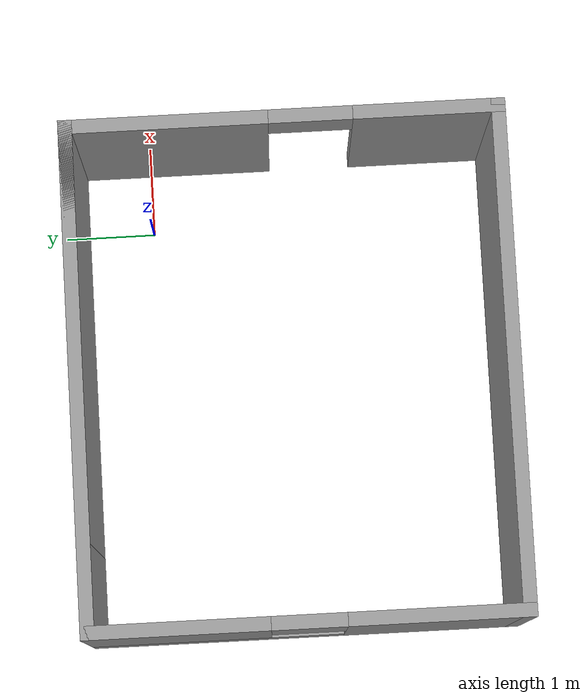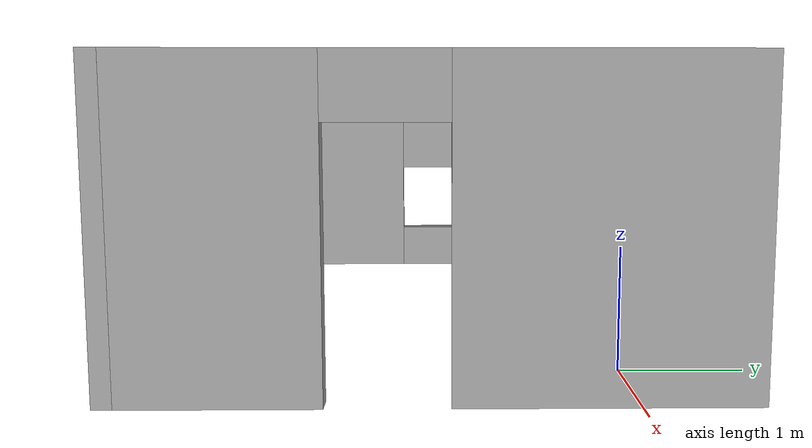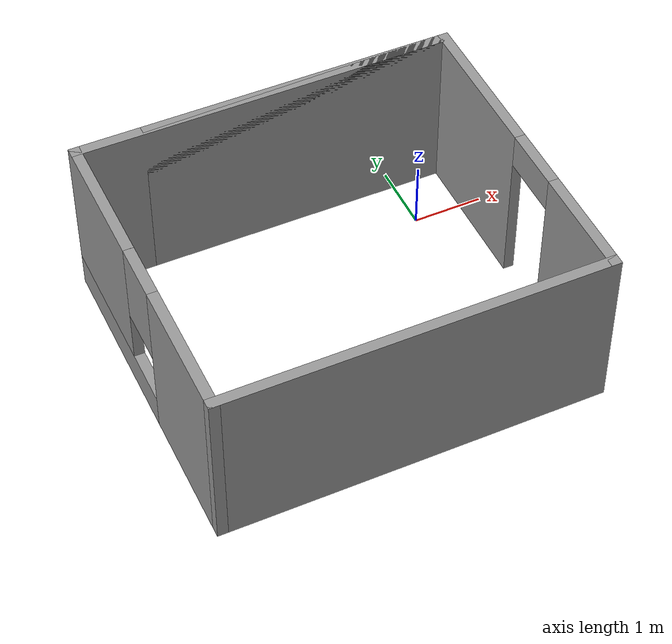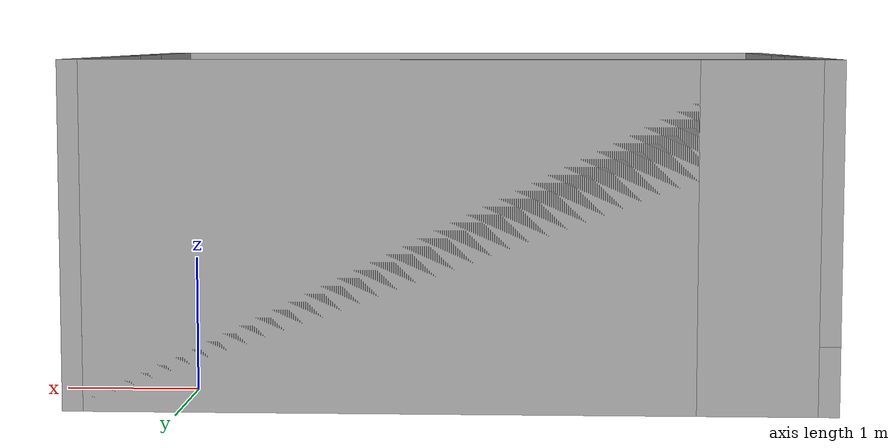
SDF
<?xml version='1.0'?>
<sdf version='1.7'>
  <model name='Card_shop'>
    <pose>-1.91789 -1.49091 0 0 -0 0</pose>
    <link name='Wall_0'>
      <collision name='Wall_0_Collision'>
        <geometry>
          <box>
            <size>4.5 0.15 2.5</size>
          </box>
        </geometry>
        <pose>0 0 1.25 0 -0 0</pose>
      </collision>
      <visual name='Wall_0_Visual'>
        <pose>0 0 1.25 0 -0 0</pose>
        <geometry>
          <box>
            <size>4.5 0.15 2.5</size>
          </box>
        </geometry>
        <material>
          <script>
            <uri>file://media/materials/scripts/gazebo.material</uri>
            <name>Gazebo/Grey</name>
          </script>
          <ambient>1 1 1 1</ambient>
        </material>
        <meta>
          <layer>0</layer>
        </meta>
      </visual>
      <pose>0.5 2.3 0 0 -0 0</pose>
    </link>
    <link name='Wall_1'>
      <pose>2.675 0 0 0 -0 -1.5708</pose>
      <visual name='Wall_1_Visual_0'>
        <pose>-1.25949 0 1.25 0 -0 0</pose>
        <geometry>
          <box>
            <size>2.23102 0.15 2.5</size>
          </box>
        </geometry>
        <material>
          <script>
            <uri>file://media/materials/scripts/gazebo.material</uri>
            <name>Gazebo/Grey</name>
          </script>
          <ambient>1 1 1 1</ambient>
        </material>
        <meta>
          <layer>0</layer>
        </meta>
      </visual>
      <collision name='Wall_1_Collision_0'>
        <geometry>
          <box>
            <size>2.23102 0.15 2.5</size>
          </box>
        </geometry>
        <pose>-1.25949 0 1.25 0 -0 0</pose>
      </collision>
      <visual name='Wall_1_Visual_1'>
        <pose>1.56551 0 1.25 0 -0 0</pose>
        <geometry>
          <box>
            <size>1.61898 0.15 2.5</size>
          </box>
        </geometry>
        <material>
          <script>
            <uri>file://media/materials/scripts/gazebo.material</uri>
            <name>Gazebo/Grey</name>
          </script>
          <ambient>1 1 1 1</ambient>
        </material>
        <meta>
          <layer>0</layer>
        </meta>
      </visual>
      <collision name='Wall_1_Collision_1'>
        <geometry>
          <box>
            <size>1.61898 0.15 2.5</size>
          </box>
        </geometry>
        <pose>1.56551 0 1.25 0 -0 0</pose>
      </collision>
      <visual name='Wall_1_Visual_2'>
        <pose>0.306019 0 2.25 0 -0 0</pose>
        <geometry>
          <box>
            <size>0.9 0.15 0.5</size>
          </box>
        </geometry>
        <material>
          <script>
            <uri>file://media/materials/scripts/gazebo.material</uri>
            <name>Gazebo/Grey</name>
          </script>
          <ambient>1 1 1 1</ambient>
        </material>
        <meta>
          <layer>0</layer>
        </meta>
      </visual>
      <collision name='Wall_1_Collision_2'>
        <geometry>
          <box>
            <size>0.9 0.15 0.5</size>
          </box>
        </geometry>
        <pose>0.306019 0 2.25 0 -0 0</pose>
      </collision>
    </link>
    <link name='Wall_2'>
      <collision name='Wall_2_Collision'>
        <geometry>
          <box>
            <size>5.5 0.15 2.5</size>
          </box>
        </geometry>
        <pose>0 0 1.25 0 -0 0</pose>
      </collision>
      <visual name='Wall_2_Visual'>
        <pose>0 0 1.25 0 -0 0</pose>
        <geometry>
          <box>
            <size>5.5 0.15 2.5</size>
          </box>
        </geometry>
        <material>
          <script>
            <uri>file://media/materials/scripts/gazebo.material</uri>
            <name>Gazebo/Grey</name>
          </script>
          <ambient>1 1 1 1</ambient>
        </material>
        <meta>
          <layer>0</layer>
        </meta>
      </visual>
      <pose>-0 -2.3 0 0 -0 3.14159</pose>
    </link>
    <link name='Wall_3'>
      <pose>-2.675 0 0 0 -0 1.5708</pose>
      <visual name='Wall_3_Visual_0'>
        <pose>-1.39184 0 1.25 0 -0 0</pose>
        <geometry>
          <box>
            <size>1.96631 0.15 2.5</size>
          </box>
        </geometry>
        <material>
          <script>
            <uri>file://media/materials/scripts/gazebo.material</uri>
            <name>Gazebo/Grey</name>
          </script>
          <ambient>1 1 1 1</ambient>
        </material>
        <meta>
          <layer>0</layer>
        </meta>
      </visual>
      <collision name='Wall_3_Collision_0'>
        <geometry>
          <box>
            <size>1.96631 0.15 2.5</size>
          </box>
        </geometry>
        <pose>-1.39184 0 1.25 0 -0 0</pose>
      </collision>
      <visual name='Wall_3_Visual_1'>
        <pose>0.983156 0 0.25 0 -0 0</pose>
        <geometry>
          <box>
            <size>2.78369 0.15 0.5</size>
          </box>
        </geometry>
        <material>
          <script>
            <uri>file://media/materials/scripts/gazebo.material</uri>
            <name>Gazebo/Grey</name>
          </script>
          <ambient>1 1 1 1</ambient>
        </material>
        <meta>
          <layer>0</layer>
        </meta>
      </visual>
      <collision name='Wall_3_Collision_1'>
        <geometry>
          <box>
            <size>2.78369 0.15 0.5</size>
          </box>
        </geometry>
        <pose>0.983156 0 0.25 0 -0 0</pose>
      </collision>
      <visual name='Wall_3_Visual_2'>
        <pose>1.38316 0 1.5 0 -0 0</pose>
        <geometry>
          <box>
            <size>1.98369 0.15 2</size>
          </box>
        </geometry>
        <material>
          <script>
            <uri>file://media/materials/scripts/gazebo.material</uri>
            <name>Gazebo/Grey</name>
          </script>
          <ambient>1 1 1 1</ambient>
        </material>
        <meta>
          <layer>0</layer>
        </meta>
      </visual>
      <collision name='Wall_3_Collision_2'>
        <geometry>
          <box>
            <size>1.98369 0.15 2</size>
          </box>
        </geometry>
        <pose>1.38316 0 1.5 0 -0 0</pose>
      </collision>
      <visual name='Wall_3_Visual_3'>
        <pose>-0.008688 0 1.9 0 -0 0</pose>
        <geometry>
          <box>
            <size>0.8 0.15 1.2</size>
          </box>
        </geometry>
        <material>
          <script>
            <uri>file://media/materials/scripts/gazebo.material</uri>
            <name>Gazebo/Grey</name>
          </script>
          <ambient>1 1 1 1</ambient>
        </material>
        <meta>
          <layer>0</layer>
        </meta>
      </visual>
      <collision name='Wall_3_Collision_3'>
        <geometry>
          <box>
            <size>0.8 0.15 1.2</size>
          </box>
        </geometry>
        <pose>-0.008688 0 1.9 0 -0 0</pose>
      </collision>
    </link>
    <link name='Wall_4'>
      <collision name='Wall_4_Collision'>
        <geometry>
          <box>
            <size>5.5 0.15 2.5</size>
          </box>
        </geometry>
        <pose>0 0 1.25 0 -0 0</pose>
      </collision>
      <visual name='Wall_4_Visual'>
        <pose>0 0 1.25 0 -0 0</pose>
        <geometry>
          <box>
            <size>5.5 0.15 2.5</size>
          </box>
        </geometry>
        <material>
          <script>
            <uri>file://media/materials/scripts/gazebo.material</uri>
            <name>Gazebo/Grey</name>
          </script>
          <ambient>1 1 1 1</ambient>
        </material>
        <meta>
          <layer>0</layer>
        </meta>
      </visual>
      <pose>-0 2.3 0 0 -0 0</pose>
    </link>
    <static>1</static>
  </model>
</sdf>
